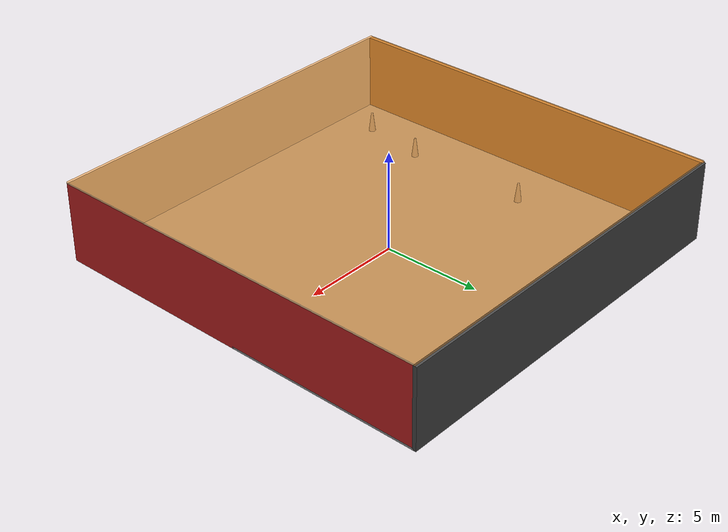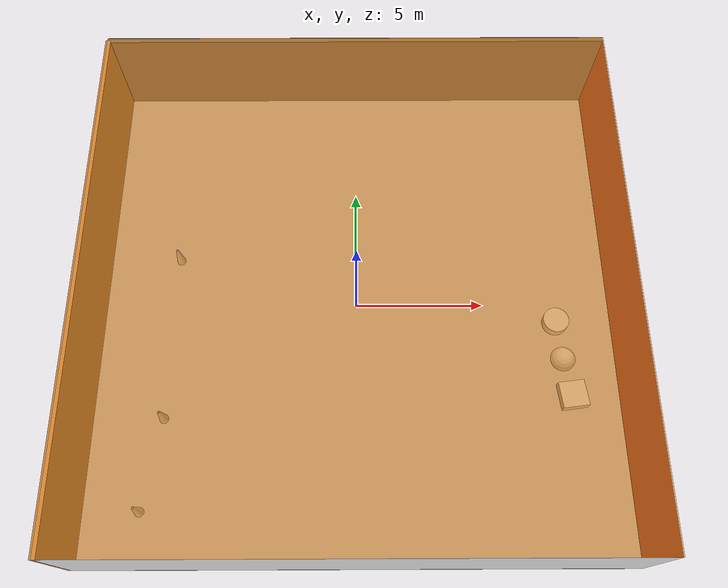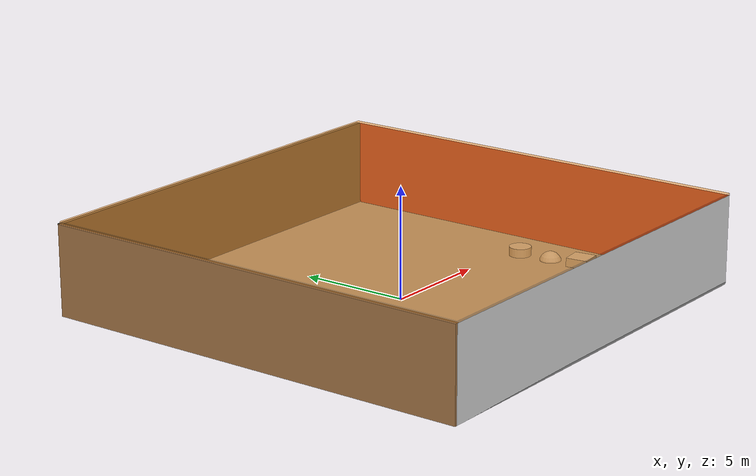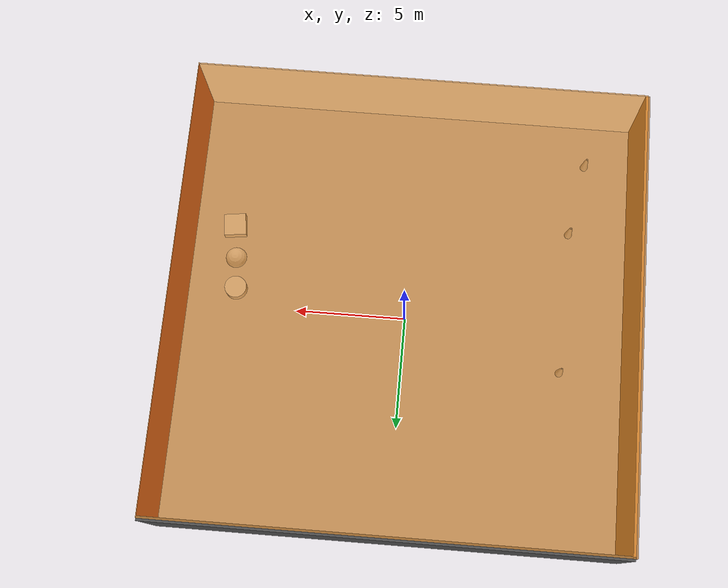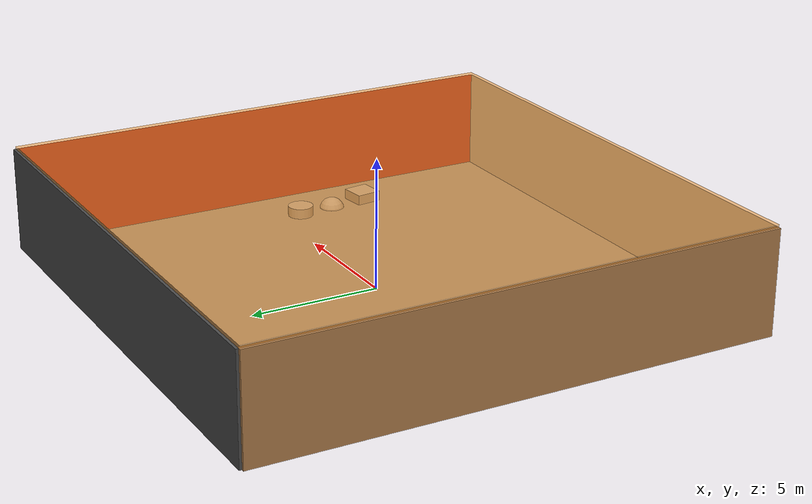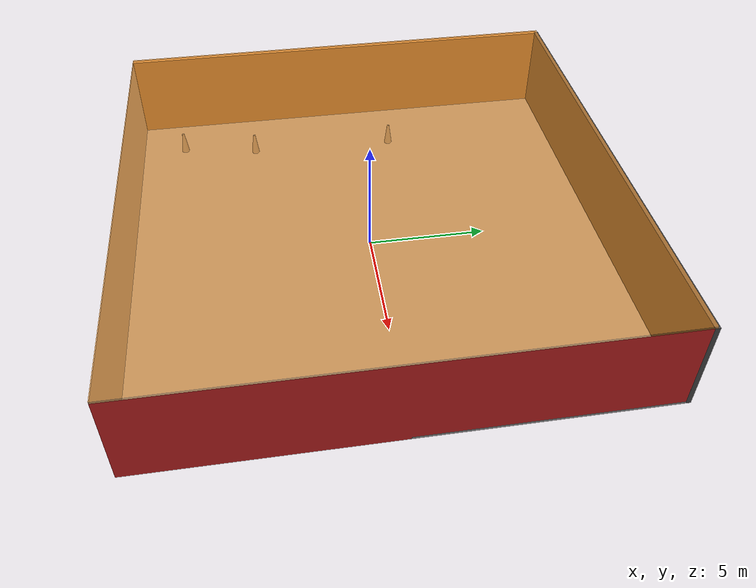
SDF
<sdf version="1.4">
 <world name="default">
  <physics type="ode">
   <max_step_size>0.001</max_step_size>
   <real_time_factor>1</real_time_factor>
   <real_time_update_rate>1000</real_time_update_rate>
   <gravity>0 0 -9.8</gravity>
  </physics>
  <scene><ambient>0.4 0.4 0.4 1</ambient><background>0.7 0.7 0.7 1</background><shadows>1</shadows></scene>
  <model name="Surrounding">
   <static>1</static>
   <link name="Ceiling">
    <collision name="Ceiling_Collision"><geometry><box><size>20 20 0.1</size></box></geometry></collision>
    <visual name="Ceiling_Visual">
     <geometry><box><size>20 20 0.1</size></box></geometry>
     <material>
      <script>
       <uri>file://media/materials/scripts/gazebo.material</uri>
       <name>Gazebo/OrangeTransparent</name>
      </script>
     </material>
    </visual>
    <pose>0 0 4.05 0 0 0</pose>
   </link>
   <link name="Wall_South">
    <collision name="Wall_South_Collision">
     <geometry><box><size>20 0 4</size></box></geometry>
     <pose>0 0 2 0 -0 0</pose>
    </collision>
    <visual name="Wall_South_Visual">
     <pose>0 0 2 0 -0 0</pose>
     <geometry><box><size>20 0 4</size></box></geometry>
     <material>
      <script><uri>file://media/materials/scripts/gazebo.material</uri><name>Gazebo/WhiteGlow</name></script>
     </material>
    </visual>
    <velocity_decay><linear>0</linear><angular>0</angular></velocity_decay>
    <pose>0 -10 0 0 -0 0</pose>
   </link>
   <link name="Wall_East">
    <collision name="Wall_21_Collision">
     <geometry><box><size>20 0 4</size></box></geometry>
     <pose>0 0 2 0 -0 0</pose>
    </collision>
    <visual name="Wall_21_Visual">
     <pose>0 0 2 0 -0 0</pose>
     <geometry><box><size>20 0 4</size></box></geometry>
     <material>
      <script><uri>file://media/materials/scripts/gazebo.material</uri><name>Gazebo/RedBright</name></script>
     </material>
    </visual>
    <velocity_decay><linear>0</linear><angular>0</angular></velocity_decay>
    <pose>10 0 0 0 -0 1.5708</pose>
   </link>
   <link name="Wall_North">
    <collision name="Wall_22_Collision">
     <geometry><box><size>20 0.2 4</size></box></geometry>
     <pose>0 0 2 0 -0 0</pose>
    </collision>
    <visual name="Wall_22_Visual">
     <pose>0 0 2 0 -0 0</pose>
     <geometry><box><size>20 0.2 4</size></box></geometry>
     <material>
      <script><uri>file://media/materials/scripts/gazebo.material</uri><name>Gazebo/Road</name></script>
     </material>
    </visual>
    <velocity_decay><linear>0</linear><angular>0</angular></velocity_decay>
    <pose>0 10 0 0 -0 0</pose>
   </link>
   <link name="Wall_West">
    <collision name="Wall_23_Collision">
     <geometry><box><size>20 0.2 4</size></box></geometry>
     <pose>0 0 2 0 -0 0</pose>
    </collision>
    <visual name="Wall_23_Visual">
     <pose>0 0 2 0 -0 0</pose>
     <geometry><box><size>20 0.2 4</size></box></geometry>
     <material>
      <script><uri>file://media/materials/scripts/gazebo.material</uri><name>Gazebo/WoodFloor</name></script>
     </material>
    </visual>
    <velocity_decay><linear>0</linear><angular>0</angular></velocity_decay>
    <pose>-10 0 0 0 0 -1.5708</pose>
   </link>
   <link name="Ground_link">
    <collision name="collision">
     <pose>0 0 .05 0 -0 0</pose>
     <geometry><box><size>20 20 0.1</size></box></geometry>
    </collision>
    <visual name="visual">
     <pose>0 0 .05 0 -0 0</pose>
     <geometry><box><size>20 20 0.1</size></box></geometry>
     <material>
      <script><uri>file://media/materials/scripts/gazebo.material</uri><name>Gazebo/GreyGradientSky</name></script>
     </material>
    </visual>
   </link>
   <static>1</static>
  </model>
  <spherical_coordinates>
   <surface_model>EARTH_WGS84</surface_model>
   <latitude_deg>0</latitude_deg>
   <longitude_deg>0</longitude_deg>
   <elevation>0</elevation>
   <heading_deg>0</heading_deg>
  </spherical_coordinates>
  <light name="lightball_0" type="diffuse">
   <diffuse>0.8 0.8 0.8 1</diffuse>
   <specular>0.2 0.2 0.2 1</specular>
   <attenuation>
    <range>100</range>
    <constant>0.7</constant>
    <linear>0.01</linear>
    <quadratic>0.001</quadratic>
   </attenuation>
   <direction>-0.5 0.1 -0.9</direction>
   <pose>7.43664797285 -5.99814752531 3.88228287881 0 0 0</pose>
  </light>
  <light name="lightball_1" type="diffuse">
   <diffuse>0.8 0.8 0.8 1</diffuse>
   <specular>0.2 0.2 0.2 1</specular>
   <attenuation>
    <range>100</range>
    <constant>0.7</constant>
    <linear>0.01</linear>
    <quadratic>0.001</quadratic>
   </attenuation>
   <direction>-0.5 0.1 -0.9</direction>
   <pose>4.84112332348 7.21136068247 3.86238698965 0 0 0</pose>
  </light>
  <light name="lightball_2" type="diffuse">
   <diffuse>0.8 0.8 0.8 1</diffuse>
   <specular>0.2 0.2 0.2 1</specular>
   <attenuation>
    <range>100</range>
    <constant>0.7</constant>
    <linear>0.01</linear>
    <quadratic>0.001</quadratic>
   </attenuation>
   <direction>-0.5 0.1 -0.9</direction>
   <pose>1.84553262111 -5.75086885841 3.05417925653 0 0 0</pose>
  </light>
  <include>
   <uri>model://construction_cone</uri>
   <pose>-7.84316838484 -8.01856611778 0 0 0 1.41598414781</pose>
  </include>
  <include>
   <uri>model://construction_cone</uri>
   <pose>-7.2447227611 -4.60784292503 0 0 0 3.09957682627</pose>
  </include>
  <include>
   <uri>model://construction_cone</uri>
   <pose>-7.11147425771 1.95725122781 0 0 0 2.98780769957</pose>
  </include>
  <include>
   <uri>model://textured_shapes</uri>
   <pose>7.99726323215 -2.29407101017 0 0 0 0.125403597407</pose>
  </include>
 </world>
</sdf>

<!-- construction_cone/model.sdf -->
<sdf version="1.5">
  <model name="Construction Cone">
    <link name="link">
      <collision name="collision">
        <geometry>
          <mesh>
            <scale>10 10 10</scale>
            <uri>file://isr-testbed/construction_cone/meshes/construction_cone.dae</uri>
          </mesh>
        </geometry>
      </collision>
      <visual name="visual">
        <geometry>
          <mesh>
            <scale>10 10 10</scale>
            <uri>file://isr-testbed/construction_cone/meshes/construction_cone.dae</uri>
          </mesh>
        </geometry>
      </visual>
    </link>
  </model>
</sdf>

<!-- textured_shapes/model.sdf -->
<sdf version="1.6">
  <model name="textured_shapes">
    <pose>0 0 0.5 0 0 0</pose>
    <link name="box">
      <pose>0 -1.5 0 0 0 0</pose>
      <collision name="collision">
        <geometry>
          <box>
            <size>1 1 1</size>
          </box>
        </geometry>
      </collision>
      <visual name="visual">
        <geometry>
          <box>
            <size>1 1 1</size>
          </box>
        </geometry>
        <material>
          <script>
            <uri>model://../model_source/models/textured_shapes/materials/scripts</uri>
            <uri>model://../model_source/models/textured_shapes/materials/textures</uri>
            <name>TexturedShape/Squares</name>
          </script>
        </material>
      </visual>
    </link>
    <link name="sphere">
      <collision name="collision">
        <geometry>
          <sphere>
            <radius>0.5</radius>
          </sphere>
        </geometry>
      </collision>
      <visual name="visual">
        <geometry>
          <sphere>
            <radius>0.5</radius>
          </sphere>
        </geometry>
        <material>
          <script>
            <uri>model://../model_source/models/textured_shapes/materials/scripts</uri>
            <uri>model://../model_source/models/textured_shapes/materials/textures</uri>
            <name>TexturedShape/Squares</name>
          </script>
        </material>
      </visual>
    </link>
    <link name="cylinder">
      <pose>0 1.5 0 0 0 0</pose>
      <collision name="collision">
        <geometry>
          <cylinder>
            <radius>0.5</radius>
            <length>1</length>
          </cylinder>
        </geometry>
      </collision>
      <visual name="visual">
        <geometry>
          <cylinder>
            <radius>0.5</radius>
            <length>1</length>
          </cylinder>
        </geometry>
        <material>
          <script>
            <uri>model://../model_source/models/textured_shapes/materials/scripts</uri>
            <uri>model://../model_source/models/textured_shapes/materials/textures</uri>
            <name>TexturedShape/Squares</name>
          </script>
        </material>
      </visual>
    </link>
  </model>
</sdf>
